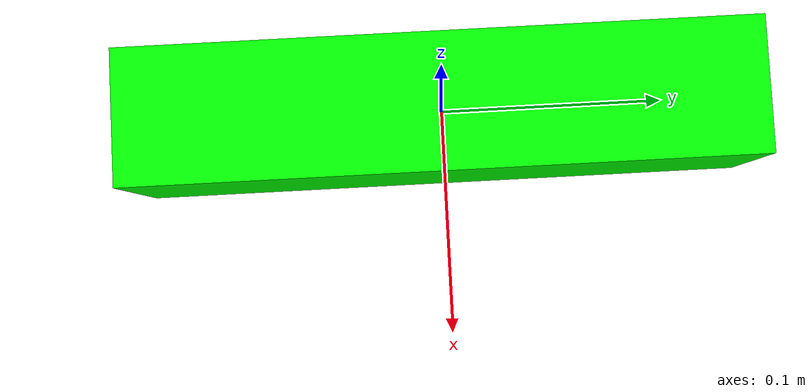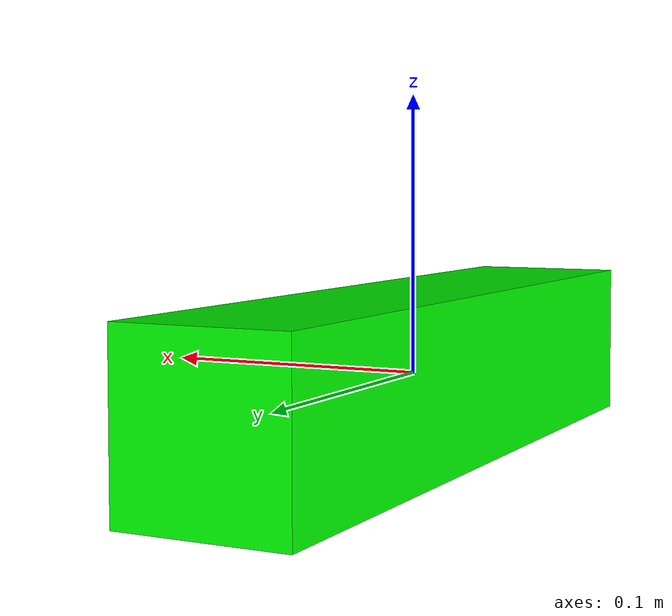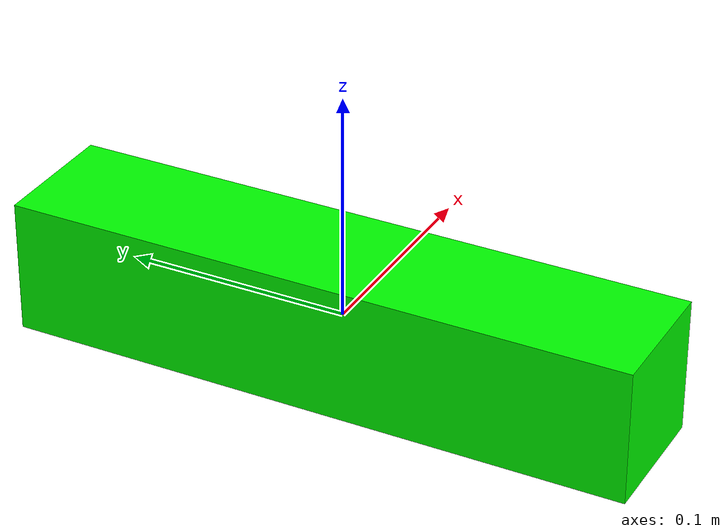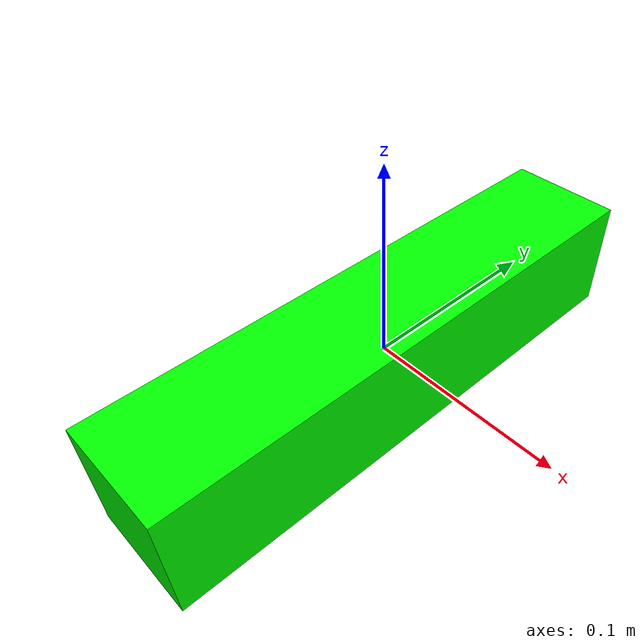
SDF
<?xml version="1.0"?>
<sdf version="1.7">
  <model name="block9">
    <pose> 0 0 0 0 0 0 </pose>
    <link name="block9_link">
      <inertial>
        <mass>0.2</mass>
        <inertia>
          <ixx>0.0257474184909201</ixx>
          <ixy>0.0</ixy>
          <ixz>0.0</ixz>
          <iyy>0.028155796674108682</iyy>
          <iyz>0.0</iyz>
          <izz>0.0257474184909201</izz>
        </inertia>
      </inertial>
      <collision name="collision">
        <geometry>
          <box>
            <size> 0.06 0.28 0.06 </size>
          </box>
        </geometry>
        <surface>
            <friction>
                <ode>
                    <mu>1.0</mu>
                    <mu2>1.0</mu2>
                </ode>
            </friction>
        </surface>
      </collision>
      <visual name="visual">
        <geometry>
          <box>
            <size> 0.06 0.28 0.06 </size>
          </box>
        </geometry>
        <material>
          <diffuse>0 1 0 1</diffuse>
        </material>
      </visual>
    </link>
  </model>
</sdf>
